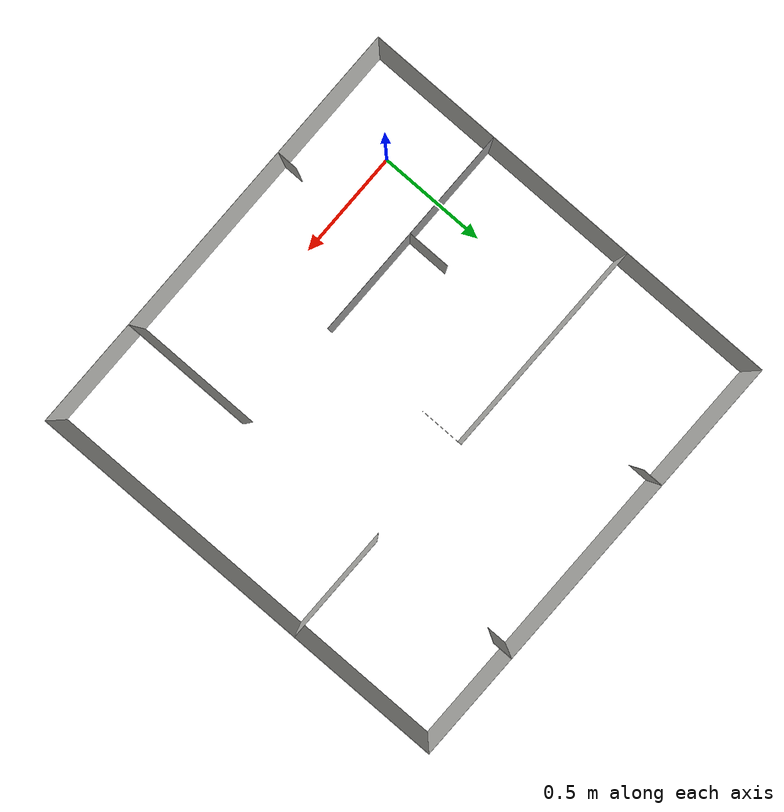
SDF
<?xml version='1.0'?>
<sdf version='1.6'>
  <model name='qmp_maze_map'>
    <pose frame=''>0.6975 0.6975 0 0 -0 0</pose>
    <link name='Wall_11'>
      <collision name='Wall_11_Collision'>
        <geometry>
          <box>
            <size>1.995 0.001 0.3</size>
          </box>
        </geometry>
        <pose frame=''>0 0 0.15 0 -0 0</pose>
      </collision>
      <visual name='Wall_11_Visual'>
        <pose frame=''>0 0 0.15 0 -0 0</pose>
        <geometry>
          <box>
            <size>1.995 0.001 0.3</size>
          </box>
        </geometry>
        <material>
          <script>
            <uri>file://media/materials/scripts/gazebo.material</uri>
            <name>Gazebo/CeilingTiled</name>
          </script>
          <ambient>1 1 1 1</ambient>
        </material>
        <meta>
          <layer>0</layer>
        </meta>
      </visual>
      <pose frame=''>-0 0.9975 0 0 -0 3.14159</pose>
    </link>
    <link name='Wall_13'>
      <collision name='Wall_13_Collision'>
        <geometry>
          <box>
            <size>0.995 0.001 0.3</size>
          </box>
        </geometry>
        <pose frame=''>0 0 0.15 0 -0 0</pose>
      </collision>
      <visual name='Wall_13_Visual'>
        <pose frame=''>0 0 0.15 0 -0 0</pose>
        <geometry>
          <box>
            <size>0.995 0.001 0.3</size>
          </box>
        </geometry>
        <material>
          <script>
            <uri>file://media/materials/scripts/gazebo.material</uri>
            <name>Gazebo/Grey</name>
          </script>
          <ambient>1 1 1 1</ambient>
        </material>
        <meta>
          <layer>0</layer>
        </meta>
      </visual>
      <pose frame=''>-0.5 -0.3975 0 0 -0 0</pose>
    </link>
    <link name='Wall_15'>
      <collision name='Wall_15_Collision'>
        <geometry>
          <box>
            <size>0.595 0.001 0.3</size>
          </box>
        </geometry>
        <pose frame=''>0 0 0.15 0 -0 0</pose>
      </collision>
      <visual name='Wall_15_Visual'>
        <pose frame=''>0 0 0.15 0 -0 0</pose>
        <geometry>
          <box>
            <size>0.595 0.001 0.3</size>
          </box>
        </geometry>
        <material>
          <script>
            <uri>file://media/materials/scripts/gazebo.material</uri>
            <name>Gazebo/CeilingTiled</name>
          </script>
          <ambient>1 1 1 1</ambient>
        </material>
        <meta>
          <layer>0</layer>
        </meta>
      </visual>
      <pose frame=''>0.4975 -0.7 0 0 -0 1.5708</pose>
    </link>
    <link name='Wall_17'>
      <collision name='Wall_17_Collision'>
        <geometry>
          <box>
            <size>0.195 0.001 0.3</size>
          </box>
        </geometry>
        <pose frame=''>0 0 0.15 0 -0 0</pose>
      </collision>
      <visual name='Wall_17_Visual'>
        <pose frame=''>0 0 0.15 0 -0 0</pose>
        <geometry>
          <box>
            <size>0.195 0.001 0.3</size>
          </box>
        </geometry>
        <material>
          <script>
            <uri>file://media/materials/scripts/gazebo.material</uri>
            <name>Gazebo/CeilingTiled</name>
          </script>
          <ambient>1 1 1 1</ambient>
        </material>
        <meta>
          <layer>0</layer>
        </meta>
      </visual>
      <pose frame=''>-0.4975 -0.3 0 0 -0 1.5708</pose>
    </link>
    <link name='Wall_19'>
      <collision name='Wall_19_Collision'>
        <geometry>
          <box>
            <size>0.995 0.001 0.3</size>
          </box>
        </geometry>
        <pose frame=''>0 0 0.15 0 -0 0</pose>
      </collision>
      <visual name='Wall_19_Visual'>
        <pose frame=''>0 0 0.15 0 -0 0</pose>
        <geometry>
          <box>
            <size>0.995 0.001 0.3</size>
          </box>
        </geometry>
        <material>
          <script>
            <uri>file://media/materials/scripts/gazebo.material</uri>
            <name>Gazebo/CeilingTiled</name>
          </script>
          <ambient>1 1 1 1</ambient>
        </material>
        <meta>
          <layer>0</layer>
        </meta>
      </visual>
      <pose frame=''>-0.5 0.2975 0 0 -0 0</pose>
    </link>
    <link name='Wall_21'>
      <collision name='Wall_21_Collision'>
        <geometry>
          <box>
            <size>0.195 0.001 0.3</size>
          </box>
        </geometry>
        <pose frame=''>0 0 0.15 0 -0 0</pose>
      </collision>
      <visual name='Wall_21_Visual'>
        <pose frame=''>0 0 0.15 0 -0 0</pose>
        <geometry>
          <box>
            <size>0.195 0.001 0.3</size>
          </box>
        </geometry>
        <material>
          <script>
            <uri>file://media/materials/scripts/gazebo.material</uri>
            <name>Gazebo/CeilingTiled</name>
          </script>
          <ambient>1 1 1 1</ambient>
        </material>
        <meta>
          <layer>0</layer>
        </meta>
      </visual>
      <pose frame=''>-0.0025 0.2 0 0 -0 -1.5708</pose>
    </link>
    <link name='Wall_23'>
      <collision name='Wall_23_Collision'>
        <geometry>
          <box>
            <size>0.495 0.001 0.3</size>
          </box>
        </geometry>
        <pose frame=''>0 0 0.15 0 -0 0</pose>
      </collision>
      <visual name='Wall_23_Visual'>
        <pose frame=''>0 0 0.15 0 -0 0</pose>
        <geometry>
          <box>
            <size>0.495 0.001 0.3</size>
          </box>
        </geometry>
        <material>
          <script>
            <uri>file://media/materials/scripts/gazebo.material</uri>
            <name>Gazebo/CeilingTiled</name>
          </script>
          <ambient>1 1 1 1</ambient>
        </material>
        <meta>
          <layer>0</layer>
        </meta>
      </visual>
      <pose frame=''>0.75 0.2975 0 0 -0 3.14159</pose>
    </link>
    <link name='Wall_25'>
      <collision name='Wall_25_Collision'>
        <geometry>
          <box>
            <size>0.095 0.001 0.3</size>
          </box>
        </geometry>
        <pose frame=''>0 0 0.15 0 -0 0</pose>
      </collision>
      <visual name='Wall_25_Visual'>
        <pose frame=''>0 0 0.15 0 -0 0</pose>
        <geometry>
          <box>
            <size>0.095 0.001 0.3</size>
          </box>
        </geometry>
        <material>
          <script>
            <uri>file://media/materials/scripts/gazebo.material</uri>
            <name>Gazebo/CeilingTiled</name>
          </script>
          <ambient>1 1 1 1</ambient>
        </material>
        <meta>
          <layer>0</layer>
        </meta>
      </visual>
      <pose frame=''>-0.3975 0.95 0 0 -0 -1.5708</pose>
    </link>
    <link name='Wall_27'>
      <collision name='Wall_27_Collision'>
        <geometry>
          <box>
            <size>0.095 0.001 0.3</size>
          </box>
        </geometry>
        <pose frame=''>0 0 0.15 0 -0 0</pose>
      </collision>
      <visual name='Wall_27_Visual'>
        <pose frame=''>0 0 0.15 0 -0 0</pose>
        <geometry>
          <box>
            <size>0.095 0.001 0.3</size>
          </box>
        </geometry>
        <material>
          <script>
            <uri>file://media/materials/scripts/gazebo.material</uri>
            <name>Gazebo/CeilingTiled</name>
          </script>
          <ambient>1 1 1 1</ambient>
        </material>
        <meta>
          <layer>0</layer>
        </meta>
      </visual>
      <pose frame=''>-0.3975 -0.95 0 0 -0 1.5708</pose>
    </link>
    <link name='Wall_29'>
      <collision name='Wall_29_Collision'>
        <geometry>
          <box>
            <size>0.095 0.001 0.3</size>
          </box>
        </geometry>
        <pose frame=''>0 0 0.15 0 -0 0</pose>
      </collision>
      <visual name='Wall_29_Visual'>
        <pose frame=''>0 0 0.15 0 -0 0</pose>
        <geometry>
          <box>
            <size>0.095 0.001 0.3</size>
          </box>
        </geometry>
        <material>
          <script>
            <uri>file://media/materials/scripts/gazebo.material</uri>
            <name>Gazebo/CeilingTiled</name>
          </script>
          <ambient>1 1 1 1</ambient>
        </material>
        <meta>
          <layer>0</layer>
        </meta>
      </visual>
      <pose frame=''>0.5025 0.95 0 0 -0 -1.5708</pose>
    </link>
    <link name='Wall_5'>
      <collision name='Wall_5_Collision'>
        <geometry>
          <box>
            <size>1.995 0.001 0.3</size>
          </box>
        </geometry>
        <pose frame=''>0 0 0.15 0 -0 0</pose>
      </collision>
      <visual name='Wall_5_Visual'>
        <pose frame=''>0 0 0.15 0 -0 0</pose>
        <geometry>
          <box>
            <size>1.995 0.001 0.3</size>
          </box>
        </geometry>
        <material>
          <script>
            <uri>file://media/materials/scripts/gazebo.material</uri>
            <name>Gazebo/CeilingTiled</name>
          </script>
          <ambient>1 1 1 1</ambient>
        </material>
        <meta>
          <layer>0</layer>
        </meta>
      </visual>
      <pose frame=''>-0.9975 -0 0 0 -0 1.5708</pose>
    </link>
    <link name='Wall_7'>
      <collision name='Wall_7_Collision'>
        <geometry>
          <box>
            <size>1.995 0.001 0.3</size>
          </box>
        </geometry>
        <pose frame=''>0 0 0.15 0 -0 0</pose>
      </collision>
      <visual name='Wall_7_Visual'>
        <pose frame=''>0 0 0.15 0 -0 0</pose>
        <geometry>
          <box>
            <size>1.995 0.001 0.3</size>
          </box>
        </geometry>
        <material>
          <script>
            <uri>file://media/materials/scripts/gazebo.material</uri>
            <name>Gazebo/CeilingTiled</name>
          </script>
          <ambient>1 1 1 1</ambient>
        </material>
        <meta>
          <layer>0</layer>
        </meta>
      </visual>
      <pose frame=''>-0 -0.9975 0 0 -0 0</pose>
    </link>
    <link name='Wall_9'>
      <collision name='Wall_9_Collision'>
        <geometry>
          <box>
            <size>1.995 0.001 0.3</size>
          </box>
        </geometry>
        <pose frame=''>0 0 0.15 0 -0 0</pose>
      </collision>
      <visual name='Wall_9_Visual'>
        <pose frame=''>0 0 0.15 0 -0 0</pose>
        <geometry>
          <box>
            <size>1.995 0.001 0.3</size>
          </box>
        </geometry>
        <material>
          <script>
            <uri>file://media/materials/scripts/gazebo.material</uri>
            <name>Gazebo/CeilingTiled</name>
          </script>
          <ambient>1 1 1 1</ambient>
        </material>
        <meta>
          <layer>0</layer>
        </meta>
      </visual>
      <pose frame=''>0.9975 -0 0 0 -0 1.5708</pose>
    </link>
    <static>1</static>
  </model>
</sdf>
